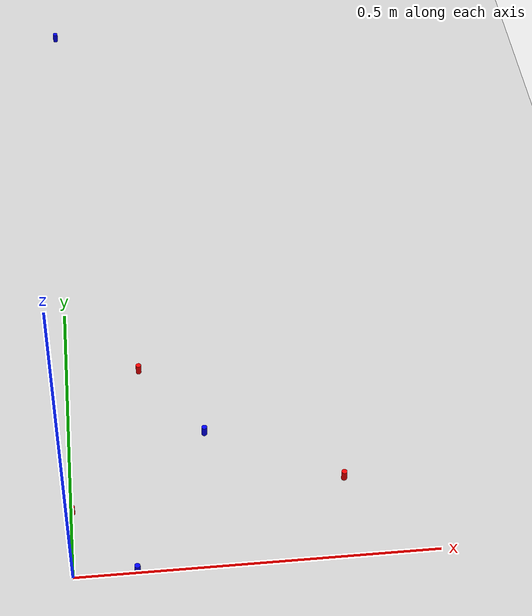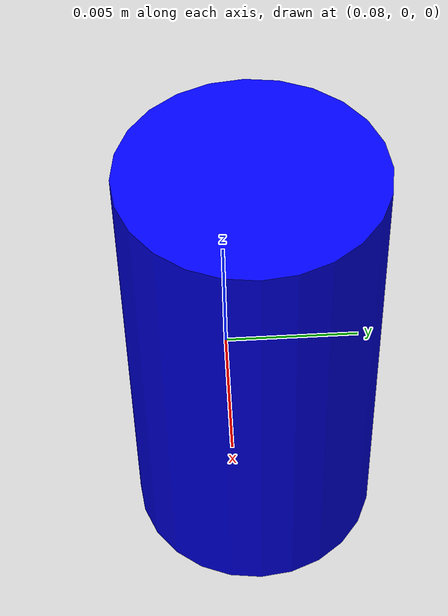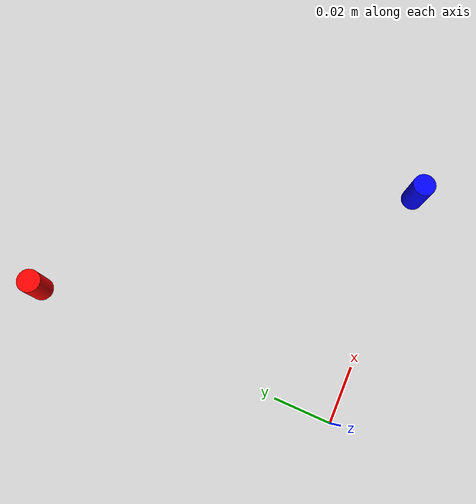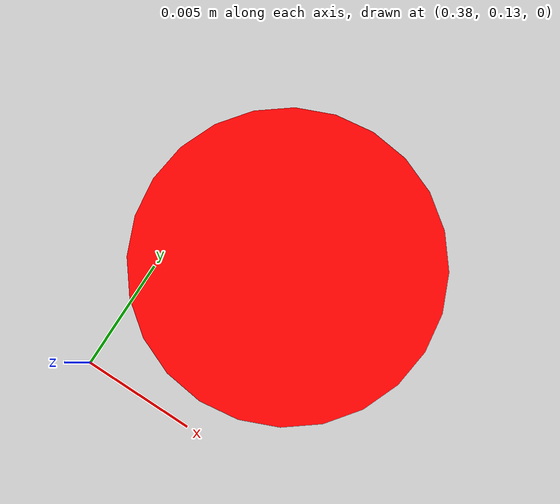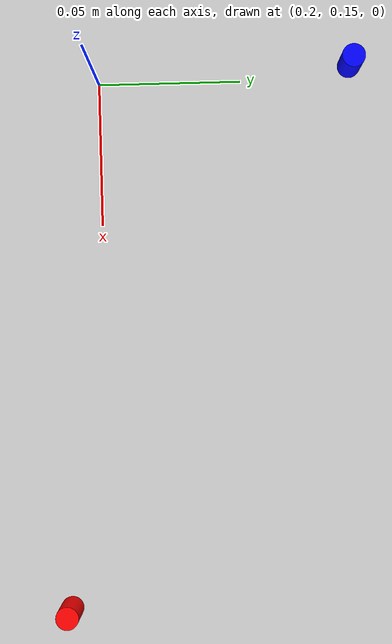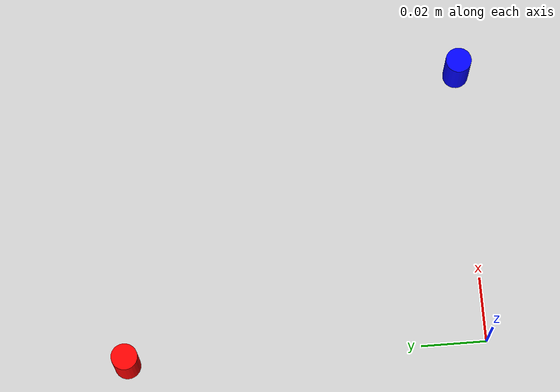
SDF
<sdf version="1.7">
 <world name="default">
  <light name="sun" type="directional">
   <pose>0 0 10 0 -0 0</pose>
   <diffuse>0.8 0.8 0.8 1</diffuse>
   <specular>0.2 0.2 0.2 1</specular>
   <attenuation>
    <range>1000</range>
    <constant>0.9</constant>
    <linear>0.01</linear>
    <quadratic>0.001</quadratic>
   </attenuation>
   <direction>-0.5 0.1 -0.9</direction>
   <spot><inner_angle>0</inner_angle><outer_angle>0</outer_angle><falloff>0</falloff></spot>
  </light>
  <model name="ground_plane">
   <static>1</static>
   <link name="link">
    <collision name="collision">
     <geometry><plane><normal>0 0 1</normal><size>100 100</size></plane></geometry>
     <surface><friction><ode><mu>100</mu><mu2>50</mu2></ode></friction></surface>
    </collision>
    <visual name="visual">
     <cast_shadows>0</cast_shadows>
     <geometry><plane><normal>0 0 1</normal><size>100 100</size></plane></geometry>
     <material>
      <script><uri>file://media/materials/scripts/gazebo.material</uri><name>Gazebo/Grey</name></script>
     </material>
    </visual>
   </link>
  </model>
  <gravity>0 0 -9.8</gravity>
  <magnetic_field>6e-06 2.3e-05 -4.2e-05</magnetic_field>
  <atmosphere type="adiabatic"/>
  <physics type="ode">
   <max_step_size>0.001</max_step_size>
   <real_time_factor>1</real_time_factor>
   <real_time_update_rate>1000</real_time_update_rate>
  </physics>
  <scene><ambient>0.4 0.4 0.4 1</ambient><background>0.7 0.7 0.7 1</background><shadows>1</shadows></scene>
  <audio><device>default</device></audio>
  <spherical_coordinates>
   <surface_model>EARTH_WGS84</surface_model>
   <latitude_deg>0</latitude_deg>
   <longitude_deg>0</longitude_deg>
   <elevation>0</elevation>
   <heading_deg>0</heading_deg>
  </spherical_coordinates>
  <model name="unit_cylinder">
   <link name="link">
    <inertial>
     <mass>0.2</mass>
     <inertia>
      <ixx>0.0291667</ixx>
      <ixy>0</ixy>
      <ixz>0</ixz>
      <iyy>0.0291667</iyy>
      <iyz>0</iyz>
      <izz>0.025</izz>
     </inertia>
    </inertial>
    <visual name="visual">
     <geometry><cylinder><radius>0.004</radius><length>0.015</length></cylinder></geometry>
     <material>
      <script><name>Gazebo/Grey</name><uri>file://media/materials/scripts/gazebo.material</uri></script>
      <shader type="pixel"><normal_map>__default__</normal_map></shader>
      <ambient>1 0 0 1</ambient>
      <diffuse>1 0 0 1</diffuse>
      <specular>1 0 0 1</specular>
      <emissive>0 0 0 1</emissive>
     </material>
    </visual>
    <collision name="collision">
     <geometry><cylinder><radius>0.004</radius><length>0.015</length></cylinder></geometry>
     <surface>
      <friction>
       <ode><mu>1</mu><mu2>1</mu2><fdir1>0 0 0</fdir1><slip1>0</slip1><slip2>0</slip2></ode>
       <torsional>
        <coefficient>1</coefficient>
        <patch_radius>0</patch_radius>
        <surface_radius>0</surface_radius>
        <use_patch_radius>1</use_patch_radius>
        <ode><slip>0</slip></ode>
       </torsional>
      </friction>
      <bounce><restitution_coefficient>0</restitution_coefficient><threshold>1e+06</threshold></bounce>
      <contact>
       <collide_without_contact>0</collide_without_contact>
       <collide_without_contact_bitmask>1</collide_without_contact_bitmask>
       <collide_bitmask>1</collide_bitmask>
       <ode>
        <soft_cfm>0</soft_cfm>
        <soft_erp>0.2</soft_erp>
        <kp>1e+13</kp>
        <kd>1</kd>
        <max_vel>0.01</max_vel>
        <min_depth>0</min_depth>
       </ode>
       <bullet>
        <split_impulse>1</split_impulse>
        <split_impulse_penetration_threshold>-0.01</split_impulse_penetration_threshold>
        <soft_cfm>0</soft_cfm>
        <soft_erp>0.2</soft_erp>
        <kp>1e+13</kp>
        <kd>1</kd>
       </bullet>
      </contact>
     </surface>
    </collision>
   </link>
   <static>0</static>
   <pose>0.001198 0.109976 0.007499 3.14158 -1.1e-05 8.8e-05</pose>
  </model>
  <model name="unit_cylinder_clone">
   <link name="link">
    <inertial>
     <mass>0.2</mass>
     <inertia>
      <ixx>0.0291667</ixx>
      <ixy>0</ixy>
      <ixz>0</ixz>
      <iyy>0.0291667</iyy>
      <iyz>0</iyz>
      <izz>0.025</izz>
     </inertia>
    </inertial>
    <visual name="visual">
     <geometry><cylinder><radius>0.004</radius><length>0.015</length></cylinder></geometry>
     <material>
      <script><name>Gazebo/Grey</name><uri>file://media/materials/scripts/gazebo.material</uri></script>
      <shader type="pixel"><normal_map>__default__</normal_map></shader>
      <ambient>0 0 1 1</ambient>
      <diffuse>0 0 1 1</diffuse>
      <specular>0 0 0.9 1</specular>
      <emissive>0 0 0 1</emissive>
     </material>
    </visual>
    <collision name="collision">
     <geometry><cylinder><radius>0.004</radius><length>0.015</length></cylinder></geometry>
     <surface>
      <friction>
       <ode><mu>1</mu><mu2>1</mu2><fdir1>0 0 0</fdir1><slip1>0</slip1><slip2>0</slip2></ode>
       <torsional>
        <coefficient>1</coefficient>
        <patch_radius>0</patch_radius>
        <surface_radius>0</surface_radius>
        <use_patch_radius>1</use_patch_radius>
        <ode><slip>0</slip></ode>
       </torsional>
      </friction>
      <bounce><restitution_coefficient>0</restitution_coefficient><threshold>1e+06</threshold></bounce>
      <contact>
       <collide_without_contact>0</collide_without_contact>
       <collide_without_contact_bitmask>1</collide_without_contact_bitmask>
       <collide_bitmask>1</collide_bitmask>
       <ode>
        <soft_cfm>0</soft_cfm>
        <soft_erp>0.2</soft_erp>
        <kp>1e+13</kp>
        <kd>1</kd>
        <max_vel>0.01</max_vel>
        <min_depth>0</min_depth>
       </ode>
       <bullet>
        <split_impulse>1</split_impulse>
        <split_impulse_penetration_threshold>-0.01</split_impulse_penetration_threshold>
        <soft_cfm>0</soft_cfm>
        <soft_erp>0.2</soft_erp>
        <kp>1e+13</kp>
        <kd>1</kd>
       </bullet>
      </contact>
     </surface>
    </collision>
   </link>
   <static>0</static>
   <pose>0.086414 0.000702 0.007491 -3.14157 -5.4e-05 8.8e-05</pose>
  </model>
  <model name="unit_cylinder_clone_0">
   <link name="link">
    <inertial>
     <mass>0.2</mass>
     <inertia>
      <ixx>0.0291667</ixx>
      <ixy>0</ixy>
      <ixz>0</ixz>
      <iyy>0.0291667</iyy>
      <iyz>0</iyz>
      <izz>0.025</izz>
     </inertia>
    </inertial>
    <visual name="visual">
     <geometry><cylinder><radius>0.004</radius><length>0.015</length></cylinder></geometry>
     <material>
      <script><name>Gazebo/Grey</name><uri>file://media/materials/scripts/gazebo.material</uri></script>
      <shader type="pixel"><normal_map>__default__</normal_map></shader>
      <ambient>1 0 0 1</ambient>
      <diffuse>1 0 0 1</diffuse>
      <specular>1 0 0 1</specular>
      <emissive>0 0 0 1</emissive>
     </material>
    </visual>
    <collision name="collision">
     <geometry><cylinder><radius>0.004</radius><length>0.015</length></cylinder></geometry>
     <surface>
      <friction>
       <ode><mu>1</mu><mu2>1</mu2><fdir1>0 0 0</fdir1><slip1>0</slip1><slip2>0</slip2></ode>
       <torsional>
        <coefficient>1</coefficient>
        <patch_radius>0</patch_radius>
        <surface_radius>0</surface_radius>
        <use_patch_radius>1</use_patch_radius>
        <ode><slip>0</slip></ode>
       </torsional>
      </friction>
      <bounce><restitution_coefficient>0</restitution_coefficient><threshold>1e+06</threshold></bounce>
      <contact>
       <collide_without_contact>0</collide_without_contact>
       <collide_without_contact_bitmask>1</collide_without_contact_bitmask>
       <collide_bitmask>1</collide_bitmask>
       <ode>
        <soft_cfm>0</soft_cfm>
        <soft_erp>0.2</soft_erp>
        <kp>1e+13</kp>
        <kd>1</kd>
        <max_vel>0.01</max_vel>
        <min_depth>0</min_depth>
       </ode>
       <bullet>
        <split_impulse>1</split_impulse>
        <split_impulse_penetration_threshold>-0.01</split_impulse_penetration_threshold>
        <soft_cfm>0</soft_cfm>
        <soft_erp>0.2</soft_erp>
        <kp>1e+13</kp>
        <kd>1</kd>
       </bullet>
      </contact>
     </surface>
    </collision>
   </link>
   <static>0</static>
   <pose>0.107287 0.370655 0.007491 3.14158 -1.3e-05 8.8e-05</pose>
  </model>
  <model name="unit_cylinder_clone_clone">
   <link name="link">
    <inertial>
     <mass>0.2</mass>
     <inertia>
      <ixx>0.0291667</ixx>
      <ixy>0</ixy>
      <ixz>0</ixz>
      <iyy>0.0291667</iyy>
      <iyz>0</iyz>
      <izz>0.025</izz>
     </inertia>
    </inertial>
    <visual name="visual">
     <geometry><cylinder><radius>0.004</radius><length>0.015</length></cylinder></geometry>
     <material>
      <script><name>Gazebo/Grey</name><uri>file://media/materials/scripts/gazebo.material</uri></script>
      <shader type="pixel"><normal_map>__default__</normal_map></shader>
      <ambient>0 0 1 1</ambient>
      <diffuse>0 0 1 1</diffuse>
      <specular>0 0 0.9 1</specular>
      <emissive>0 0 0 1</emissive>
     </material>
    </visual>
    <collision name="collision">
     <geometry><cylinder><radius>0.004</radius><length>0.015</length></cylinder></geometry>
     <surface>
      <friction>
       <ode><mu>1</mu><mu2>1</mu2><fdir1>0 0 0</fdir1><slip1>0</slip1><slip2>0</slip2></ode>
       <torsional>
        <coefficient>1</coefficient>
        <patch_radius>0</patch_radius>
        <surface_radius>0</surface_radius>
        <use_patch_radius>1</use_patch_radius>
        <ode><slip>0</slip></ode>
       </torsional>
      </friction>
      <bounce><restitution_coefficient>0</restitution_coefficient><threshold>1e+06</threshold></bounce>
      <contact>
       <collide_without_contact>0</collide_without_contact>
       <collide_without_contact_bitmask>1</collide_without_contact_bitmask>
       <collide_bitmask>1</collide_bitmask>
       <ode>
        <soft_cfm>0</soft_cfm>
        <soft_erp>0.2</soft_erp>
        <kp>1e+13</kp>
        <kd>1</kd>
        <max_vel>0.01</max_vel>
        <min_depth>0</min_depth>
       </ode>
       <bullet>
        <split_impulse>1</split_impulse>
        <split_impulse_penetration_threshold>-0.01</split_impulse_penetration_threshold>
        <soft_cfm>0</soft_cfm>
        <soft_erp>0.2</soft_erp>
        <kp>1e+13</kp>
        <kd>1</kd>
       </bullet>
      </contact>
     </surface>
    </collision>
   </link>
   <static>0</static>
   <pose>0.195495 0.238627 0.00749 3.14159 -7.9e-05 8.8e-05</pose>
  </model>
  <model name="unit_cylinder_clone_1">
   <link name="link">
    <inertial>
     <mass>0.2</mass>
     <inertia>
      <ixx>0.0291667</ixx>
      <ixy>0</ixy>
      <ixz>0</ixz>
      <iyy>0.0291667</iyy>
      <iyz>0</iyz>
      <izz>0.025</izz>
     </inertia>
    </inertial>
    <visual name="visual">
     <geometry><cylinder><radius>0.004</radius><length>0.015</length></cylinder></geometry>
     <material>
      <script><name>Gazebo/Grey</name><uri>file://media/materials/scripts/gazebo.material</uri></script>
      <shader type="pixel"><normal_map>__default__</normal_map></shader>
      <ambient>1 0 0 1</ambient>
      <diffuse>1 0 0 1</diffuse>
      <specular>1 0 0 1</specular>
      <emissive>0 0 0 1</emissive>
     </material>
    </visual>
    <collision name="collision">
     <geometry><cylinder><radius>0.004</radius><length>0.015</length></cylinder></geometry>
     <surface>
      <friction>
       <ode><mu>1</mu><mu2>1</mu2><fdir1>0 0 0</fdir1><slip1>0</slip1><slip2>0</slip2></ode>
       <torsional>
        <coefficient>1</coefficient>
        <patch_radius>0</patch_radius>
        <surface_radius>0</surface_radius>
        <use_patch_radius>1</use_patch_radius>
        <ode><slip>0</slip></ode>
       </torsional>
      </friction>
      <bounce><restitution_coefficient>0</restitution_coefficient><threshold>1e+06</threshold></bounce>
      <contact>
       <collide_without_contact>0</collide_without_contact>
       <collide_without_contact_bitmask>1</collide_without_contact_bitmask>
       <collide_bitmask>1</collide_bitmask>
       <ode>
        <soft_cfm>0</soft_cfm>
        <soft_erp>0.2</soft_erp>
        <kp>1e+13</kp>
        <kd>1</kd>
        <max_vel>0.01</max_vel>
        <min_depth>0</min_depth>
       </ode>
       <bullet>
        <split_impulse>1</split_impulse>
        <split_impulse_penetration_threshold>-0.01</split_impulse_penetration_threshold>
        <soft_cfm>0</soft_cfm>
        <soft_erp>0.2</soft_erp>
        <kp>1e+13</kp>
        <kd>1</kd>
       </bullet>
      </contact>
     </surface>
    </collision>
   </link>
   <static>0</static>
   <pose>0.385204 0.136155 0.007491 -3.14159 -9.2e-05 8.9e-05</pose>
  </model>
  <model name="unit_cylinder_clone_clone_clone">
   <link name="link">
    <inertial>
     <mass>0.2</mass>
     <inertia>
      <ixx>0.0291667</ixx>
      <ixy>0</ixy>
      <ixz>0</ixz>
      <iyy>0.0291667</iyy>
      <iyz>0</iyz>
      <izz>0.025</izz>
     </inertia>
    </inertial>
    <visual name="visual">
     <geometry><cylinder><radius>0.004</radius><length>0.015</length></cylinder></geometry>
     <material>
      <script><name>Gazebo/Grey</name><uri>file://media/materials/scripts/gazebo.material</uri></script>
      <shader type="pixel"><normal_map>__default__</normal_map></shader>
      <ambient>0 0 1 1</ambient>
      <diffuse>0 0 1 1</diffuse>
      <specular>0 0 0.9 1</specular>
      <emissive>0 0 0 1</emissive>
     </material>
    </visual>
    <collision name="collision">
     <geometry><cylinder><radius>0.004</radius><length>0.015</length></cylinder></geometry>
     <surface>
      <friction>
       <ode><mu>1</mu><mu2>1</mu2><fdir1>0 0 0</fdir1><slip1>0</slip1><slip2>0</slip2></ode>
       <torsional>
        <coefficient>1</coefficient>
        <patch_radius>0</patch_radius>
        <surface_radius>0</surface_radius>
        <use_patch_radius>1</use_patch_radius>
        <ode><slip>0</slip></ode>
       </torsional>
      </friction>
      <bounce><restitution_coefficient>0</restitution_coefficient><threshold>1e+06</threshold></bounce>
      <contact>
       <collide_without_contact>0</collide_without_contact>
       <collide_without_contact_bitmask>1</collide_without_contact_bitmask>
       <collide_bitmask>1</collide_bitmask>
       <ode>
        <soft_cfm>0</soft_cfm>
        <soft_erp>0.2</soft_erp>
        <kp>1e+13</kp>
        <kd>1</kd>
        <max_vel>0.01</max_vel>
        <min_depth>0</min_depth>
       </ode>
       <bullet>
        <split_impulse>1</split_impulse>
        <split_impulse_penetration_threshold>-0.01</split_impulse_penetration_threshold>
        <soft_cfm>0</soft_cfm>
        <soft_erp>0.2</soft_erp>
        <kp>1e+13</kp>
        <kd>1</kd>
       </bullet>
      </contact>
     </surface>
    </collision>
   </link>
   <static>0</static>
   <pose>-0.000534 1.2249 0.0075 3.14158 -4.4e-05 8.8e-05</pose>
  </model>
 </world>
</sdf>
